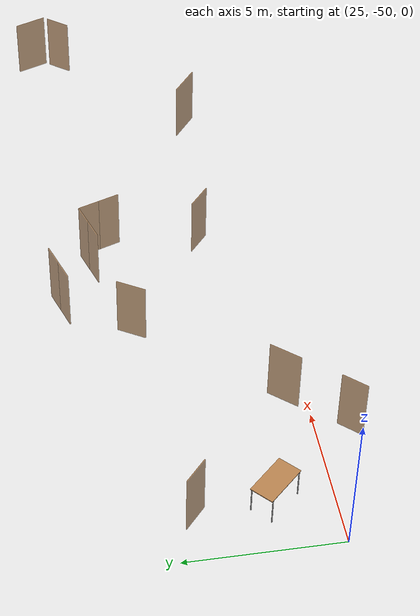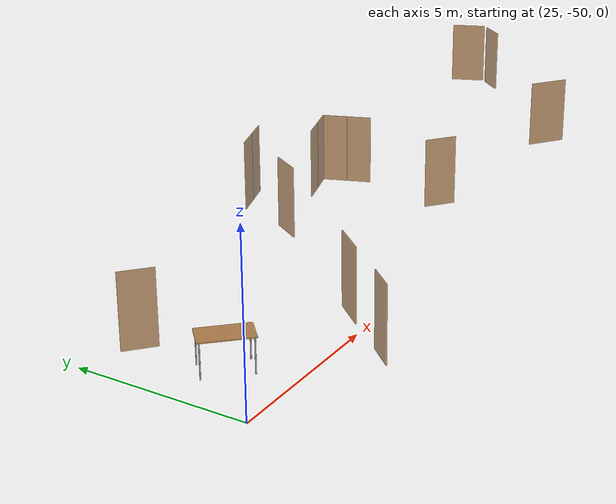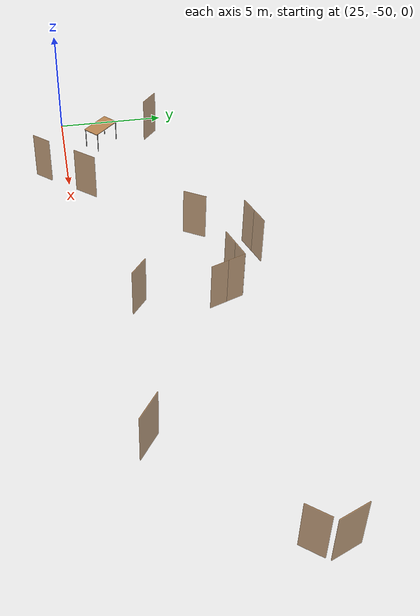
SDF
<sdf version="1.7">
 <world name="world">
  <model name="OpenRobotics/Table_2">
   <static>1</static>
   <link name="link">
    <collision name="surface">
     <pose>0 0 1 0 -0 0</pose>
     <geometry><box><size>1.5 0.8 0.03</size></box></geometry>
     <surface><friction><ode><mu>0.6</mu><mu2>0.6</mu2></ode></friction></surface>
    </collision>
    <visual name="visual1">
     <pose>0 0 1 0 -0 0</pose>
     <geometry><box><size>1.5 0.8 0.03</size></box></geometry>
     <material>
      <script><uri>file://media/materials/scripts/gazebo.material</uri><name>Gazebo/Wood</name></script>
     </material>
    </visual>
    <collision name="front_left_leg_c">
     <pose>0.68 0.38 0.5 0 -0 0</pose>
     <geometry><cylinder><radius>0.02</radius><length>1</length></cylinder></geometry>
    </collision>
    <visual name="front_left_leg">
     <pose>0.68 0.38 0.5 0 -0 0</pose>
     <geometry><cylinder><radius>0.02</radius><length>1</length></cylinder></geometry>
     <material>
      <script><uri>file://media/materials/scripts/gazebo.material</uri><name>Gazebo/Grey</name></script>
     </material>
    </visual>
    <collision name="front_right_leg_c">
     <pose>0.68 -0.38 0.5 0 -0 0</pose>
     <geometry><cylinder><radius>0.02</radius><length>1</length></cylinder></geometry>
    </collision>
    <visual name="front_right_leg">
     <pose>0.68 -0.38 0.5 0 -0 0</pose>
     <geometry><cylinder><radius>0.02</radius><length>1</length></cylinder></geometry>
     <material>
      <script><uri>file://media/materials/scripts/gazebo.material</uri><name>Gazebo/Grey</name></script>
     </material>
    </visual>
    <collision name="back_right_leg_c">
     <pose>-0.68 -0.38 0.5 0 -0 0</pose>
     <geometry><cylinder><radius>0.02</radius><length>1</length></cylinder></geometry>
    </collision>
    <visual name="back_right_leg">
     <pose>-0.68 -0.38 0.5 0 -0 0</pose>
     <geometry><cylinder><radius>0.02</radius><length>1</length></cylinder></geometry>
     <material>
      <script><uri>file://media/materials/scripts/gazebo.material</uri><name>Gazebo/Grey</name></script>
     </material>
    </visual>
    <collision name="back_left_leg_c">
     <pose>-0.68 0.38 0.5 0 -0 0</pose>
     <geometry><cylinder><radius>0.02</radius><length>1</length></cylinder></geometry>
    </collision>
    <visual name="back_left_leg">
     <pose>-0.68 0.38 0.5 0 -0 0</pose>
     <geometry><cylinder><radius>0.02</radius><length>1</length></cylinder></geometry>
     <material>
      <script><uri>file://media/materials/scripts/gazebo.material</uri><name>Gazebo/Grey</name></script>
     </material>
    </visual>
   </link>
   <pose>26.7964 -48.1502 0 0 -0 2.3292</pose>
  </model>
  <model name="D7">
   <pose>50.4968 -42.9865 0 0 -0 -1.18211</pose>
   <link name="right">
    <pose>0 0 1.11 0 -0 0</pose>
    <visual name="right_visual">
     <geometry><box><size>1.21471 0.03 2.2</size></box></geometry>
     <material><ambient>0.5 0.25 0 0.6</ambient><diffuse>0.5 0.25 0 0.6</diffuse></material>
    </visual>
    <collision name="right_collision">
     <geometry><box><size>1.21471 0.03 2.2</size></box></geometry>
     <surface><contact><collide_bitmask>2</collide_bitmask></contact></surface>
    </collision>
    <inertial>
     <mass>50</mass>
     <inertia><ixx>20.1704</ixx><iyy>26.3147</iyy><izz>6.15175</izz><ixy>0</ixy><ixz>0</ixz><iyz>0</iyz></inertia>
    </inertial>
   </link>
   <joint name="right_joint" type="revolute">
    <parent>world</parent>
    <child>right</child>
    <axis>
     <xyz>0 0 1</xyz>
     <limit><lower>0</lower><upper>1.57</upper></limit>
     <dynamics><spring_reference>0</spring_reference><spring_stiffness>0</spring_stiffness></dynamics>
    </axis>
    <pose>0.612355 0 0 0 -0 0</pose>
   </joint>
   <plugin name="door_D7" filename="libdoor.so">
    <v_max_door>0.5</v_max_door>
    <a_max_door>0.3</a_max_door>
    <a_nom_door>0.15</a_nom_door>
    <dx_min_door>0.01</dx_min_door>
    <f_max_door>500.0</f_max_door>
    <door name="D7" type="SwingDoor" left_joint_name="empty_joint" right_joint_name="right_joint"/>
   </plugin>
  </model>
  <model name="D8">
   <pose>50.3156 -44.0611 0 0 -0 0.893687</pose>
   <link name="right">
    <pose>0 0 1.11 0 -0 0</pose>
    <visual name="right_visual">
     <geometry><box><size>0.954253 0.03 2.2</size></box></geometry>
     <material><ambient>0.5 0.25 0 0.6</ambient><diffuse>0.5 0.25 0 0.6</diffuse></material>
    </visual>
    <collision name="right_collision">
     <geometry><box><size>0.954253 0.03 2.2</size></box></geometry>
     <surface><contact><collide_bitmask>2</collide_bitmask></contact></surface>
    </collision>
    <inertial>
     <mass>50</mass>
     <inertia><ixx>20.1704</ixx><iyy>23.9608</iyy><izz>3.79791</izz><ixy>0</ixy><ixz>0</ixz><iyz>0</iyz></inertia>
    </inertial>
   </link>
   <joint name="right_joint" type="revolute">
    <parent>world</parent>
    <child>right</child>
    <axis>
     <xyz>0 0 1</xyz>
     <limit><lower>0</lower><upper>1.57</upper></limit>
     <dynamics><spring_reference>0</spring_reference><spring_stiffness>0</spring_stiffness></dynamics>
    </axis>
    <pose>0.482127 0 0 0 -0 0</pose>
   </joint>
   <plugin name="door_D8" filename="libdoor.so">
    <v_max_door>0.5</v_max_door>
    <a_max_door>0.3</a_max_door>
    <a_nom_door>0.15</a_nom_door>
    <dx_min_door>0.01</dx_min_door>
    <f_max_door>500.0</f_max_door>
    <door name="D8" type="SwingDoor" left_joint_name="empty_joint" right_joint_name="right_joint"/>
   </plugin>
  </model>
  <model name="D9">
   <pose>45.5456 -48.4768 0 0 -0 2.50023</pose>
   <link name="right">
    <pose>0 0 1.11 0 -0 0</pose>
    <visual name="right_visual">
     <geometry><box><size>1.30298 0.03 2.2</size></box></geometry>
     <material><ambient>0.5 0.25 0 0.6</ambient><diffuse>0.5 0.25 0 0.6</diffuse></material>
    </visual>
    <collision name="right_collision">
     <geometry><box><size>1.30298 0.03 2.2</size></box></geometry>
     <surface><contact><collide_bitmask>2</collide_bitmask></contact></surface>
    </collision>
    <inertial>
     <mass>50</mass>
     <inertia><ixx>20.1704</ixx><iyy>27.2407</iyy><izz>7.07774</izz><ixy>0</ixy><ixz>0</ixz><iyz>0</iyz></inertia>
    </inertial>
   </link>
   <joint name="right_joint" type="revolute">
    <parent>world</parent>
    <child>right</child>
    <axis>
     <xyz>0 0 -1</xyz>
     <limit><lower>0</lower><upper>1.57</upper></limit>
     <dynamics><spring_reference>0</spring_reference><spring_stiffness>0</spring_stiffness></dynamics>
    </axis>
    <pose>0.65649 0 0 0 -0 0</pose>
   </joint>
   <plugin name="door_D9" filename="libdoor.so">
    <v_max_door>0.5</v_max_door>
    <a_max_door>0.3</a_max_door>
    <a_nom_door>0.15</a_nom_door>
    <dx_min_door>0.01</dx_min_door>
    <f_max_door>500.0</f_max_door>
    <door name="D9" type="SwingDoor" left_joint_name="empty_joint" right_joint_name="right_joint"/>
   </plugin>
  </model>
  <model name="D43">
   <pose>38.6636 -47.868 0 0 -0 2.45989</pose>
   <link name="right">
    <pose>0 0 1.11 0 -0 0</pose>
    <visual name="right_visual">
     <geometry><box><size>0.991421 0.03 2.2</size></box></geometry>
     <material><ambient>0.5 0.25 0 0.6</ambient><diffuse>0.5 0.25 0 0.6</diffuse></material>
    </visual>
    <collision name="right_collision">
     <geometry><box><size>0.991421 0.03 2.2</size></box></geometry>
     <surface><contact><collide_bitmask>2</collide_bitmask></contact></surface>
    </collision>
    <inertial>
     <mass>50</mass>
     <inertia><ixx>20.1704</ixx><iyy>24.2621</iyy><izz>4.09923</izz><ixy>0</ixy><ixz>0</ixz><iyz>0</iyz></inertia>
    </inertial>
   </link>
   <joint name="right_joint" type="revolute">
    <parent>world</parent>
    <child>right</child>
    <axis>
     <xyz>0 0 -1</xyz>
     <limit><lower>0</lower><upper>1.57</upper></limit>
     <dynamics><spring_reference>0</spring_reference><spring_stiffness>0</spring_stiffness></dynamics>
    </axis>
    <pose>0.50071 0 0 0 -0 0</pose>
   </joint>
   <plugin name="door_D43" filename="libdoor.so">
    <v_max_door>0.5</v_max_door>
    <a_max_door>0.3</a_max_door>
    <a_nom_door>0.15</a_nom_door>
    <dx_min_door>0.01</dx_min_door>
    <f_max_door>500.0</f_max_door>
    <door name="D43" type="SwingDoor" left_joint_name="empty_joint" right_joint_name="right_joint"/>
   </plugin>
  </model>
  <model name="D44">
   <pose>34.5058 -44.8919 -0 0 -0 1.02515</pose>
   <link name="right">
    <pose>0 0 1.11 0 -0 0</pose>
    <visual name="right_visual">
     <geometry><box><size>1.02742 0.03 2.2</size></box></geometry>
     <material><ambient>0.5 0.25 0 0.6</ambient><diffuse>0.5 0.25 0 0.6</diffuse></material>
    </visual>
    <collision name="right_collision">
     <geometry><box><size>1.02742 0.03 2.2</size></box></geometry>
     <surface><contact><collide_bitmask>2</collide_bitmask></contact></surface>
    </collision>
    <inertial>
     <mass>50</mass>
     <inertia><ixx>20.1704</ixx><iyy>24.565</iyy><izz>4.40204</izz><ixy>0</ixy><ixz>0</ixz><iyz>0</iyz></inertia>
    </inertial>
   </link>
   <joint name="right_joint" type="revolute">
    <parent>world</parent>
    <child>right</child>
    <axis>
     <xyz>0 0 -1</xyz>
     <limit><lower>0</lower><upper>1.57</upper></limit>
     <dynamics><spring_reference>0</spring_reference><spring_stiffness>0</spring_stiffness></dynamics>
    </axis>
    <pose>0.518709 0 0 0 -0 0</pose>
   </joint>
   <plugin name="door_D44" filename="libdoor.so">
    <v_max_door>0.5</v_max_door>
    <a_max_door>0.3</a_max_door>
    <a_nom_door>0.15</a_nom_door>
    <dx_min_door>0.01</dx_min_door>
    <f_max_door>500.0</f_max_door>
    <door name="D44" type="SwingDoor" left_joint_name="empty_joint" right_joint_name="right_joint"/>
   </plugin>
  </model>
  <model name="D45">
   <pose>26.529 -45.6976 0 0 -0 2.4143</pose>
   <link name="right">
    <pose>0 0 1.11 0 -0 0</pose>
    <visual name="right_visual">
     <geometry><box><size>0.981221 0.03 2.2</size></box></geometry>
     <material><ambient>0.5 0.25 0 0.6</ambient><diffuse>0.5 0.25 0 0.6</diffuse></material>
    </visual>
    <collision name="right_collision">
     <geometry><box><size>0.981221 0.03 2.2</size></box></geometry>
     <surface><contact><collide_bitmask>2</collide_bitmask></contact></surface>
    </collision>
    <inertial>
     <mass>50</mass>
     <inertia><ixx>20.1704</ixx><iyy>24.1783</iyy><izz>4.01539</izz><ixy>0</ixy><ixz>0</ixz><iyz>0</iyz></inertia>
    </inertial>
   </link>
   <joint name="right_joint" type="revolute">
    <parent>world</parent>
    <child>right</child>
    <axis>
     <xyz>0 0 -1</xyz>
     <limit><lower>0</lower><upper>1.57</upper></limit>
     <dynamics><spring_reference>0</spring_reference><spring_stiffness>0</spring_stiffness></dynamics>
    </axis>
    <pose>0.495611 0 0 0 -0 0</pose>
   </joint>
   <plugin name="door_D45" filename="libdoor.so">
    <v_max_door>0.5</v_max_door>
    <a_max_door>0.3</a_max_door>
    <a_nom_door>0.15</a_nom_door>
    <dx_min_door>0.01</dx_min_door>
    <f_max_door>500.0</f_max_door>
    <door name="D45" type="SwingDoor" left_joint_name="empty_joint" right_joint_name="right_joint"/>
   </plugin>
  </model>
  <model name="D46">
   <pose>30.8095 -49.2646 0 0 -0 -2.28278</pose>
   <link name="right">
    <pose>0 0 1.11 0 -0 0</pose>
    <visual name="right_visual">
     <geometry><box><size>1.1245 0.03 2.2</size></box></geometry>
     <material><ambient>0.5 0.25 0 0.6</ambient><diffuse>0.5 0.25 0 0.6</diffuse></material>
    </visual>
    <collision name="right_collision">
     <geometry><box><size>1.1245 0.03 2.2</size></box></geometry>
     <surface><contact><collide_bitmask>2</collide_bitmask></contact></surface>
    </collision>
    <inertial>
     <mass>50</mass>
     <inertia><ixx>20.1704</ixx><iyy>25.4354</iyy><izz>5.27245</izz><ixy>0</ixy><ixz>0</ixz><iyz>0</iyz></inertia>
    </inertial>
   </link>
   <joint name="right_joint" type="revolute">
    <parent>world</parent>
    <child>right</child>
    <axis>
     <xyz>0 0 -1</xyz>
     <limit><lower>0</lower><upper>1.57</upper></limit>
     <dynamics><spring_reference>0</spring_reference><spring_stiffness>0</spring_stiffness></dynamics>
    </axis>
    <pose>0.567248 0 0 0 -0 0</pose>
   </joint>
   <plugin name="door_D46" filename="libdoor.so">
    <v_max_door>0.5</v_max_door>
    <a_max_door>0.3</a_max_door>
    <a_nom_door>0.15</a_nom_door>
    <dx_min_door>0.01</dx_min_door>
    <f_max_door>500.0</f_max_door>
    <door name="D46" type="SwingDoor" left_joint_name="empty_joint" right_joint_name="right_joint"/>
   </plugin>
  </model>
  <model name="D47">
   <pose>29.2579 -51.0965 0 0 -0 0.835643</pose>
   <link name="right">
    <pose>0 0 1.11 0 -0 0</pose>
    <visual name="right_visual">
     <geometry><box><size>0.912573 0.03 2.2</size></box></geometry>
     <material><ambient>0.5 0.25 0 0.6</ambient><diffuse>0.5 0.25 0 0.6</diffuse></material>
    </visual>
    <collision name="right_collision">
     <geometry><box><size>0.912573 0.03 2.2</size></box></geometry>
     <surface><contact><collide_bitmask>2</collide_bitmask></contact></surface>
    </collision>
    <inertial>
     <mass>50</mass>
     <inertia><ixx>20.1704</ixx><iyy>23.6366</iyy><izz>3.47371</izz><ixy>0</ixy><ixz>0</ixz><iyz>0</iyz></inertia>
    </inertial>
   </link>
   <joint name="right_joint" type="revolute">
    <parent>world</parent>
    <child>right</child>
    <axis>
     <xyz>0 0 1</xyz>
     <limit><lower>0</lower><upper>1.57</upper></limit>
     <dynamics><spring_reference>0</spring_reference><spring_stiffness>0</spring_stiffness></dynamics>
    </axis>
    <pose>0.461287 0 0 0 -0 0</pose>
   </joint>
   <plugin name="door_D47" filename="libdoor.so">
    <v_max_door>0.5</v_max_door>
    <a_max_door>0.3</a_max_door>
    <a_nom_door>0.15</a_nom_door>
    <dx_min_door>0.01</dx_min_door>
    <f_max_door>500.0</f_max_door>
    <door name="D47" type="SwingDoor" left_joint_name="empty_joint" right_joint_name="right_joint"/>
   </plugin>
  </model>
  <model name="DH1">
   <pose>36.0006 -42.6635 0 0 0 -2.824</pose>
   <link name="right">
    <pose>0.392621 0 1.11 0 -0 0</pose>
    <visual name="right_visual">
     <geometry><box><size>0.775242 0.03 2.2</size></box></geometry>
     <material><ambient>0.5 0.25 0 0.6</ambient><diffuse>0.5 0.25 0 0.6</diffuse></material>
    </visual>
    <collision name="right_collision">
     <geometry><box><size>0.775242 0.03 2.2</size></box></geometry>
     <surface><contact><collide_bitmask>2</collide_bitmask></contact></surface>
    </collision>
    <inertial>
     <mass>50</mass>
     <inertia><ixx>20.1704</ixx><iyy>22.6708</iyy><izz>2.50792</izz><ixy>0</ixy><ixz>0</ixz><iyz>0</iyz></inertia>
    </inertial>
   </link>
   <joint name="right_joint" type="revolute">
    <parent>world</parent>
    <child>right</child>
    <axis>
     <xyz>0 0 -1</xyz>
     <limit><lower>0</lower><upper>1.57</upper></limit>
     <dynamics><spring_reference>0</spring_reference><spring_stiffness>0</spring_stiffness></dynamics>
    </axis>
    <pose>0.392621 0 0 0 -0 0</pose>
   </joint>
   <link name="left">
    <pose>-0.392621 0 1.11 0 -0 0</pose>
    <visual name="left_visual">
     <geometry><box><size>0.775242 0.03 2.2</size></box></geometry>
     <material><ambient>0.5 0.25 0 0.6</ambient><diffuse>0.5 0.25 0 0.6</diffuse></material>
    </visual>
    <collision name="left_collision">
     <geometry><box><size>0.775242 0.03 2.2</size></box></geometry>
     <surface><contact><collide_bitmask>2</collide_bitmask></contact></surface>
    </collision>
    <inertial>
     <mass>50</mass>
     <inertia><ixx>20.1704</ixx><iyy>22.6708</iyy><izz>2.50792</izz><ixy>0</ixy><ixz>0</ixz><iyz>0</iyz></inertia>
    </inertial>
   </link>
   <joint name="left_joint" type="revolute">
    <parent>world</parent>
    <child>left</child>
    <axis>
     <xyz>0 0 -1</xyz>
     <limit><lower>-1.57</lower><upper>0</upper></limit>
     <dynamics><spring_reference>0</spring_reference><spring_stiffness>0</spring_stiffness></dynamics>
    </axis>
    <pose>-0.392621 0 0 0 -0 0</pose>
   </joint>
   <plugin name="door_DH1" filename="libdoor.so">
    <v_max_door>0.5</v_max_door>
    <a_max_door>0.3</a_max_door>
    <a_nom_door>0.15</a_nom_door>
    <dx_min_door>0.01</dx_min_door>
    <f_max_door>500.0</f_max_door>
    <door name="DH1" type="DoubleSwingDoor" left_joint_name="left_joint" right_joint_name="right_joint"/>
   </plugin>
  </model>
  <model name="DH9">
   <pose>38.9102 -44.3631 0 0 0 -1.21352</pose>
   <link name="right">
    <pose>0.385117 0 1.11 0 -0 0</pose>
    <visual name="right_visual">
     <geometry><box><size>0.760234 0.03 2.2</size></box></geometry>
     <material><ambient>0.5 0.25 0 0.6</ambient><diffuse>0.5 0.25 0 0.6</diffuse></material>
    </visual>
    <collision name="right_collision">
     <geometry><box><size>0.760234 0.03 2.2</size></box></geometry>
     <surface><contact><collide_bitmask>2</collide_bitmask></contact></surface>
    </collision>
    <inertial>
     <mass>50</mass>
     <inertia><ixx>20.1704</ixx><iyy>22.5748</iyy><izz>2.4119</izz><ixy>0</ixy><ixz>0</ixz><iyz>0</iyz></inertia>
    </inertial>
   </link>
   <joint name="right_joint" type="revolute">
    <parent>world</parent>
    <child>right</child>
    <axis>
     <xyz>0 0 -1</xyz>
     <limit><lower>0</lower><upper>1.57</upper></limit>
     <dynamics><spring_reference>0</spring_reference><spring_stiffness>0</spring_stiffness></dynamics>
    </axis>
    <pose>0.385117 0 0 0 -0 0</pose>
   </joint>
   <link name="left">
    <pose>-0.385117 0 1.11 0 -0 0</pose>
    <visual name="left_visual">
     <geometry><box><size>0.760234 0.03 2.2</size></box></geometry>
     <material><ambient>0.5 0.25 0 0.6</ambient><diffuse>0.5 0.25 0 0.6</diffuse></material>
    </visual>
    <collision name="left_collision">
     <geometry><box><size>0.760234 0.03 2.2</size></box></geometry>
     <surface><contact><collide_bitmask>2</collide_bitmask></contact></surface>
    </collision>
    <inertial>
     <mass>50</mass>
     <inertia><ixx>20.1704</ixx><iyy>22.5748</iyy><izz>2.4119</izz><ixy>0</ixy><ixz>0</ixz><iyz>0</iyz></inertia>
    </inertial>
   </link>
   <joint name="left_joint" type="revolute">
    <parent>world</parent>
    <child>left</child>
    <axis>
     <xyz>0 0 -1</xyz>
     <limit><lower>-1.57</lower><upper>0</upper></limit>
     <dynamics><spring_reference>0</spring_reference><spring_stiffness>0</spring_stiffness></dynamics>
    </axis>
    <pose>-0.385117 0 0 0 -0 0</pose>
   </joint>
   <plugin name="door_DH9" filename="libdoor.so">
    <v_max_door>0.5</v_max_door>
    <a_max_door>0.3</a_max_door>
    <a_nom_door>0.15</a_nom_door>
    <dx_min_door>0.01</dx_min_door>
    <f_max_door>500.0</f_max_door>
    <door name="DH9" type="DoubleSwingDoor" left_joint_name="left_joint" right_joint_name="right_joint"/>
   </plugin>
  </model>
  <model name="DH10">
   <pose>37.9013 -43.8735 -0 0 0 -2.83751</pose>
   <link name="right">
    <pose>0.387534 0 1.11 0 -0 0</pose>
    <visual name="right_visual">
     <geometry><box><size>0.765067 0.03 2.2</size></box></geometry>
     <material><ambient>0.5 0.25 0 0.6</ambient><diffuse>0.5 0.25 0 0.6</diffuse></material>
    </visual>
    <collision name="right_collision">
     <geometry><box><size>0.765067 0.03 2.2</size></box></geometry>
     <surface><contact><collide_bitmask>2</collide_bitmask></contact></surface>
    </collision>
    <inertial>
     <mass>50</mass>
     <inertia><ixx>20.1704</ixx><iyy>22.6055</iyy><izz>2.44262</izz><ixy>0</ixy><ixz>0</ixz><iyz>0</iyz></inertia>
    </inertial>
   </link>
   <joint name="right_joint" type="revolute">
    <parent>world</parent>
    <child>right</child>
    <axis>
     <xyz>0 0 -1</xyz>
     <limit><lower>0</lower><upper>1.57</upper></limit>
     <dynamics><spring_reference>0</spring_reference><spring_stiffness>0</spring_stiffness></dynamics>
    </axis>
    <pose>0.387534 0 0 0 -0 0</pose>
   </joint>
   <link name="left">
    <pose>-0.387534 0 1.11 0 -0 0</pose>
    <visual name="left_visual">
     <geometry><box><size>0.765067 0.03 2.2</size></box></geometry>
     <material><ambient>0.5 0.25 0 0.6</ambient><diffuse>0.5 0.25 0 0.6</diffuse></material>
    </visual>
    <collision name="left_collision">
     <geometry><box><size>0.765067 0.03 2.2</size></box></geometry>
     <surface><contact><collide_bitmask>2</collide_bitmask></contact></surface>
    </collision>
    <inertial>
     <mass>50</mass>
     <inertia><ixx>20.1704</ixx><iyy>22.6055</iyy><izz>2.44262</izz><ixy>0</ixy><ixz>0</ixz><iyz>0</iyz></inertia>
    </inertial>
   </link>
   <joint name="left_joint" type="revolute">
    <parent>world</parent>
    <child>left</child>
    <axis>
     <xyz>0 0 -1</xyz>
     <limit><lower>-1.57</lower><upper>0</upper></limit>
     <dynamics><spring_reference>0</spring_reference><spring_stiffness>0</spring_stiffness></dynamics>
    </axis>
    <pose>-0.387534 0 0 0 -0 0</pose>
   </joint>
   <plugin name="door_DH10" filename="libdoor.so">
    <v_max_door>0.5</v_max_door>
    <a_max_door>0.3</a_max_door>
    <a_nom_door>0.15</a_nom_door>
    <dx_min_door>0.01</dx_min_door>
    <f_max_door>500.0</f_max_door>
    <door name="DH10" type="DoubleSwingDoor" left_joint_name="left_joint" right_joint_name="right_joint"/>
   </plugin>
  </model>
 </world>
</sdf>
